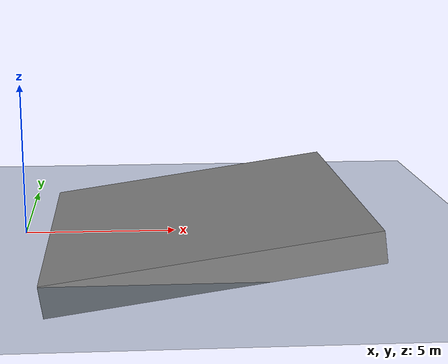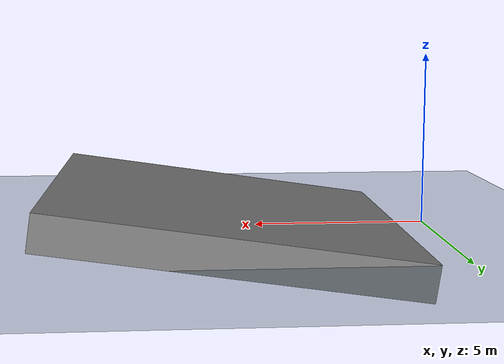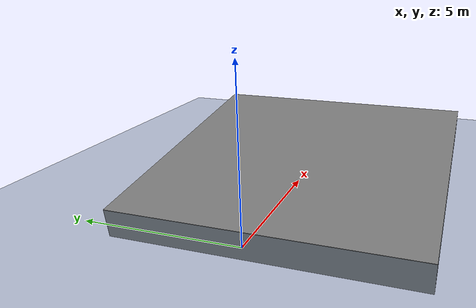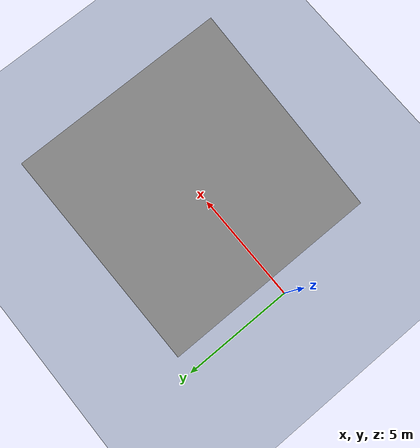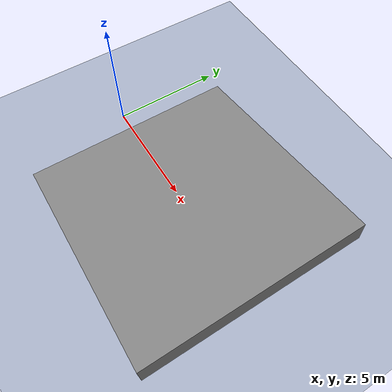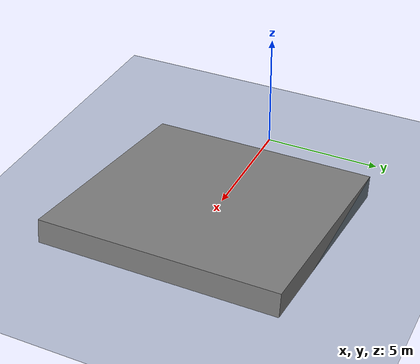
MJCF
<mujoco model="slope_1">
  <!-- Terrain Type: slope, Level: 1, Slope angle (degrees): 8.3626 -->
  <statistic center="0 0 0.1" extent="0.8" />
  <visual>
    <headlight diffuse="0.6 0.6 0.6" ambient="0.3 0.3 0.3" specular="0 0 0" />
    <rgba haze="0.15 0.25 0.35 1" />
    <global azimuth="-130" elevation="-20" />
  </visual>
  <asset>
    <texture type="skybox" builtin="gradient" rgb1="0.3 0.5 0.7" rgb2="0 0 0" width="512" height="3072" />
    <texture type="2d" name="groundplane" builtin="checker" mark="edge" rgb1="0.2 0.3 0.4" rgb2="0.1 0.2 0.3" markrgb="0.8 0.8 0.8" width="300" height="300" />
    <material name="groundplane" texture="groundplane" texuniform="true" texrepeat="5 5" reflectance="0.0" />
  </asset>
  <worldbody>
    <light pos="0 0 1.5" dir="0 0 -1" directional="true" />
    <geom name="floor" size="0 0 0.05" type="plane" material="groundplane" />
    <geom pos="5.872718512065541 0.0 0.24031624445210087" type="box" size="5.053733768215338 5.0 0.5" quat="0.9973383355451144 0.0 -0.07291258089041118 0.0" />
  </worldbody>
</mujoco>
